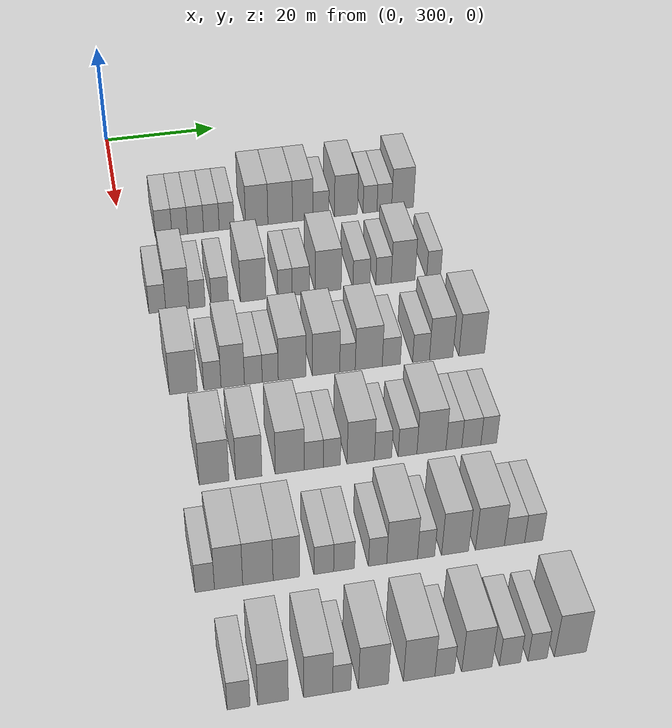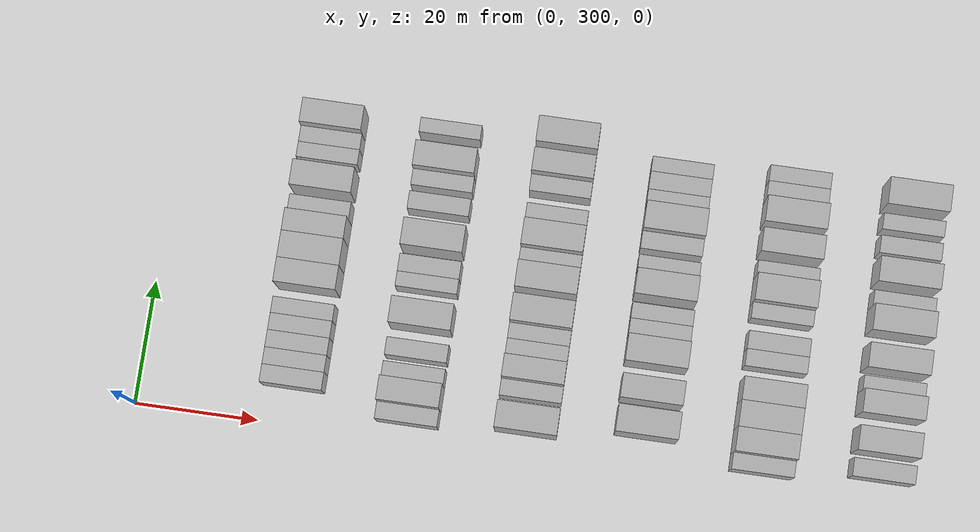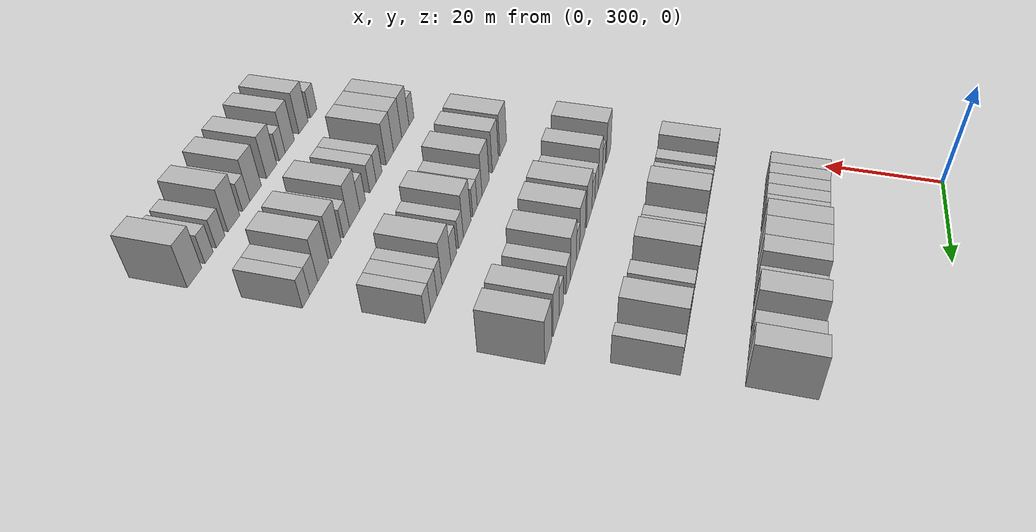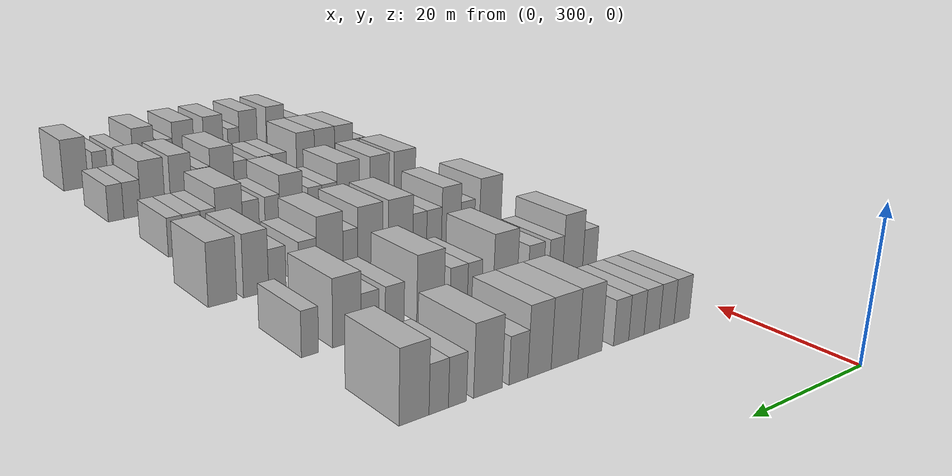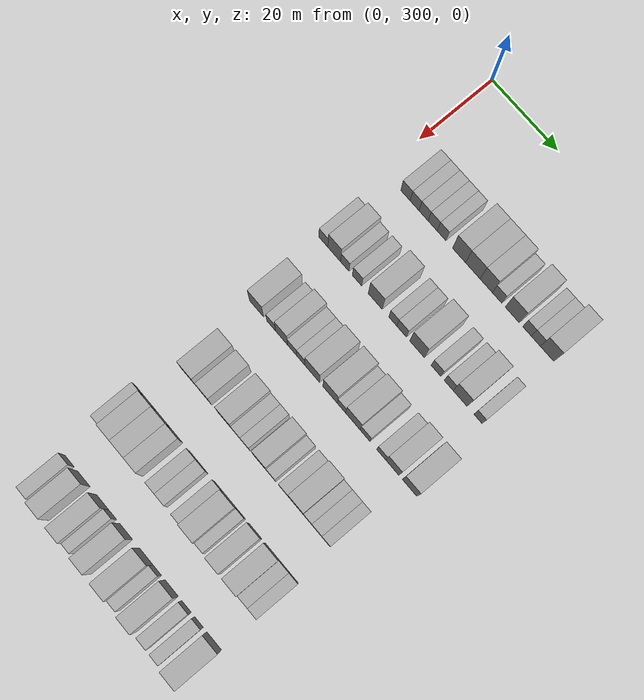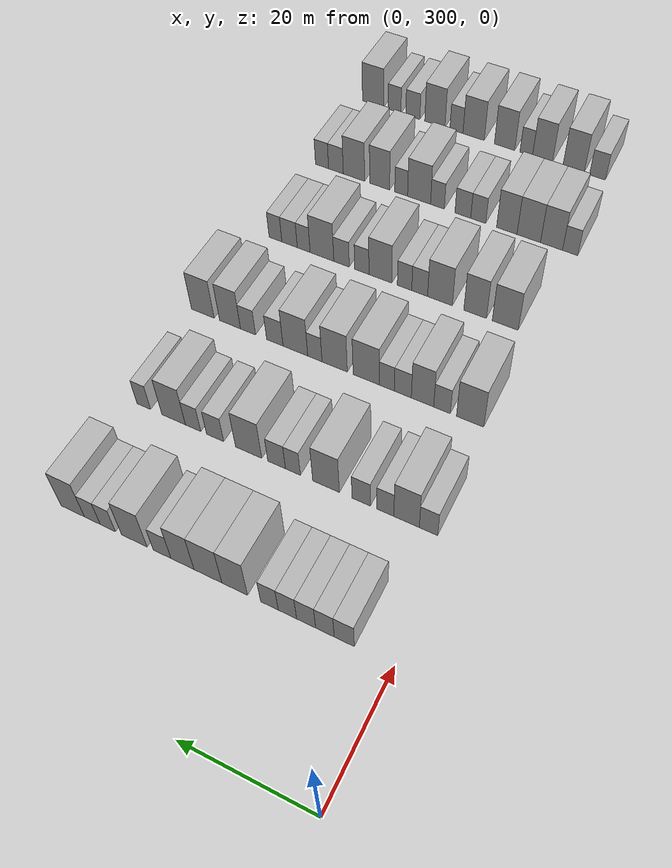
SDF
<sdf version="1.6">
 <world name="default">
  <model name="building_162">
   <static>1</static>
   <pose>25.0000 307.2149 0 0.000000 0.000000 0.000000</pose>
   <link name="link">
    <pose>0 0 3.00 0 0 0</pose>
    <collision name="collision"><geometry><box><size>10.0000 2.9018 6.0000</size></box></geometry></collision>
    <visual name="visual">
     <cast_shadows>0</cast_shadows>
     <geometry><box><size>10.0000 2.9018 6.0000</size></box></geometry>
     <material>
      <script>
       <uri>model://HANNAS_wall/materials/scripts</uri>
       <uri>model://HANNAS_wall/materials/textures</uri>
       <name>vrc/HANNAS_wall</name>
      </script>
     </material>
    </visual>
   </link>
  </model>
  <model name="building_163">
   <static>1</static>
   <pose>25.0000 310.0305 0 0.000000 0.000000 0.000000</pose>
   <link name="link">
    <pose>0 0 3.00 0 0 0</pose>
    <collision name="collision"><geometry><box><size>10.0000 2.7294 6.0000</size></box></geometry></collision>
    <visual name="visual">
     <cast_shadows>0</cast_shadows>
     <geometry><box><size>10.0000 2.7294 6.0000</size></box></geometry>
     <material>
      <script>
       <uri>model://HANNAS_wall/materials/scripts</uri>
       <uri>model://HANNAS_wall/materials/textures</uri>
       <name>vrc/HANNAS_wall</name>
      </script>
     </material>
    </visual>
   </link>
  </model>
  <model name="building_164">
   <static>1</static>
   <pose>25.0000 312.7984 0 0.000000 0.000000 0.000000</pose>
   <link name="link">
    <pose>0 0 3.00 0 0 0</pose>
    <collision name="collision"><geometry><box><size>10.0000 2.8065 6.0000</size></box></geometry></collision>
    <visual name="visual">
     <cast_shadows>0</cast_shadows>
     <geometry><box><size>10.0000 2.8065 6.0000</size></box></geometry>
     <material>
      <script>
       <uri>model://HANNAS_wall/materials/scripts</uri>
       <uri>model://HANNAS_wall/materials/textures</uri>
       <name>vrc/HANNAS_wall</name>
      </script>
     </material>
    </visual>
   </link>
  </model>
  <model name="building_165">
   <static>1</static>
   <pose>25.0000 315.5755 0 0.000000 0.000000 0.000000</pose>
   <link name="link">
    <pose>0 0 3.00 0 0 0</pose>
    <collision name="collision"><geometry><box><size>10.0000 2.7477 6.0000</size></box></geometry></collision>
    <visual name="visual">
     <cast_shadows>0</cast_shadows>
     <geometry><box><size>10.0000 2.7477 6.0000</size></box></geometry>
     <material>
      <script>
       <uri>model://HANNAS_wall/materials/scripts</uri>
       <uri>model://HANNAS_wall/materials/textures</uri>
       <name>vrc/HANNAS_wall</name>
      </script>
     </material>
    </visual>
   </link>
  </model>
  <model name="building_166">
   <static>1</static>
   <pose>25.0000 318.2759 0 0.000000 0.000000 0.000000</pose>
   <link name="link">
    <pose>0 0 3.00 0 0 0</pose>
    <collision name="collision"><geometry><box><size>10.0000 2.6532 6.0000</size></box></geometry></collision>
    <visual name="visual">
     <cast_shadows>0</cast_shadows>
     <geometry><box><size>10.0000 2.6532 6.0000</size></box></geometry>
     <material>
      <script>
       <uri>model://HANNAS_wall/materials/scripts</uri>
       <uri>model://HANNAS_wall/materials/textures</uri>
       <name>vrc/HANNAS_wall</name>
      </script>
     </material>
    </visual>
   </link>
  </model>
  <model name="building_167">
   <static>1</static>
   <pose>25.0000 323.5808 0 0.000000 0.000000 0.000000</pose>
   <link name="link">
    <pose>0 0 4.50 0 0 0</pose>
    <collision name="collision"><geometry><box><size>10.0000 3.9565 9.0000</size></box></geometry></collision>
    <visual name="visual">
     <cast_shadows>0</cast_shadows>
     <geometry><box><size>10.0000 3.9565 9.0000</size></box></geometry>
     <material>
      <script>
       <uri>model://HANNAS_wall/materials/scripts</uri>
       <uri>model://HANNAS_wall/materials/textures</uri>
       <name>vrc/HANNAS_wall</name>
      </script>
     </material>
    </visual>
   </link>
  </model>
  <model name="building_168">
   <static>1</static>
   <pose>25.0000 327.7435 0 0.000000 0.000000 0.000000</pose>
   <link name="link">
    <pose>0 0 4.50 0 0 0</pose>
    <collision name="collision"><geometry><box><size>10.0000 4.3690 9.0000</size></box></geometry></collision>
    <visual name="visual">
     <cast_shadows>0</cast_shadows>
     <geometry><box><size>10.0000 4.3690 9.0000</size></box></geometry>
     <material>
      <script>
       <uri>model://HANNAS_wall/materials/scripts</uri>
       <uri>model://HANNAS_wall/materials/textures</uri>
       <name>vrc/HANNAS_wall</name>
      </script>
     </material>
    </visual>
   </link>
  </model>
  <model name="building_169">
   <static>1</static>
   <pose>25.0000 331.7525 0 0.000000 0.000000 0.000000</pose>
   <link name="link">
    <pose>0 0 4.50 0 0 0</pose>
    <collision name="collision"><geometry><box><size>10.0000 3.6490 9.0000</size></box></geometry></collision>
    <visual name="visual">
     <cast_shadows>0</cast_shadows>
     <geometry><box><size>10.0000 3.6490 9.0000</size></box></geometry>
     <material>
      <script>
       <uri>model://HANNAS_wall/materials/scripts</uri>
       <uri>model://HANNAS_wall/materials/textures</uri>
       <name>vrc/HANNAS_wall</name>
      </script>
     </material>
    </visual>
   </link>
  </model>
  <model name="building_170">
   <static>1</static>
   <pose>25.0000 335.0031 0 0.000000 0.000000 0.000000</pose>
   <link name="link">
    <pose>0 0 3.00 0 0 0</pose>
    <collision name="collision"><geometry><box><size>10.0000 2.8521 6.0000</size></box></geometry></collision>
    <visual name="visual">
     <cast_shadows>0</cast_shadows>
     <geometry><box><size>10.0000 2.8521 6.0000</size></box></geometry>
     <material>
      <script>
       <uri>model://HANNAS_wall/materials/scripts</uri>
       <uri>model://HANNAS_wall/materials/textures</uri>
       <name>vrc/HANNAS_wall</name>
      </script>
     </material>
    </visual>
   </link>
  </model>
  <model name="building_171">
   <static>1</static>
   <pose>25.0000 339.5167 0 0.000000 0.000000 0.000000</pose>
   <link name="link">
    <pose>0 0 4.50 0 0 0</pose>
    <collision name="collision"><geometry><box><size>10.0000 4.1750 9.0000</size></box></geometry></collision>
    <visual name="visual">
     <cast_shadows>0</cast_shadows>
     <geometry><box><size>10.0000 4.1750 9.0000</size></box></geometry>
     <material>
      <script>
       <uri>model://HANNAS_wall/materials/scripts</uri>
       <uri>model://HANNAS_wall/materials/textures</uri>
       <name>vrc/HANNAS_wall</name>
      </script>
     </material>
    </visual>
   </link>
  </model>
  <model name="building_172">
   <static>1</static>
   <pose>25.0000 343.8667 0 0.000000 0.000000 0.000000</pose>
   <link name="link">
    <pose>0 0 3.00 0 0 0</pose>
    <collision name="collision"><geometry><box><size>10.0000 2.5251 6.0000</size></box></geometry></collision>
    <visual name="visual">
     <cast_shadows>0</cast_shadows>
     <geometry><box><size>10.0000 2.5251 6.0000</size></box></geometry>
     <material>
      <script>
       <uri>model://HANNAS_wall/materials/scripts</uri>
       <uri>model://HANNAS_wall/materials/textures</uri>
       <name>vrc/HANNAS_wall</name>
      </script>
     </material>
    </visual>
   </link>
  </model>
  <model name="building_173">
   <static>1</static>
   <pose>25.0000 346.4542 0 0.000000 0.000000 0.000000</pose>
   <link name="link">
    <pose>0 0 3.00 0 0 0</pose>
    <collision name="collision"><geometry><box><size>10.0000 2.6498 6.0000</size></box></geometry></collision>
    <visual name="visual">
     <cast_shadows>0</cast_shadows>
     <geometry><box><size>10.0000 2.6498 6.0000</size></box></geometry>
     <material>
      <script>
       <uri>model://HANNAS_wall/materials/scripts</uri>
       <uri>model://HANNAS_wall/materials/textures</uri>
       <name>vrc/HANNAS_wall</name>
      </script>
     </material>
    </visual>
   </link>
  </model>
  <model name="building_174">
   <static>1</static>
   <pose>25.0000 349.7677 0 0.000000 0.000000 0.000000</pose>
   <link name="link">
    <pose>0 0 4.50 0 0 0</pose>
    <collision name="collision"><geometry><box><size>10.0000 3.9772 9.0000</size></box></geometry></collision>
    <visual name="visual">
     <cast_shadows>0</cast_shadows>
     <geometry><box><size>10.0000 3.9772 9.0000</size></box></geometry>
     <material>
      <script>
       <uri>model://HANNAS_wall/materials/scripts</uri>
       <uri>model://HANNAS_wall/materials/textures</uri>
       <name>vrc/HANNAS_wall</name>
      </script>
     </material>
    </visual>
   </link>
  </model>
  <model name="building_331">
   <static>1</static>
   <pose>44.0000 303.9825 0 0.000000 0.000000 0.000000</pose>
   <link name="link">
    <pose>0 0 3.00 0 0 0</pose>
    <collision name="collision"><geometry><box><size>10.0000 2.7827 6.0000</size></box></geometry></collision>
    <visual name="visual">
     <cast_shadows>0</cast_shadows>
     <geometry><box><size>10.0000 2.7827 6.0000</size></box></geometry>
     <material>
      <script>
       <uri>model://HANNAS_wall/materials/scripts</uri>
       <uri>model://HANNAS_wall/materials/textures</uri>
       <name>vrc/HANNAS_wall</name>
      </script>
     </material>
    </visual>
   </link>
  </model>
  <model name="building_332">
   <static>1</static>
   <pose>44.0000 307.3177 0 0.000000 0.000000 0.000000</pose>
   <link name="link">
    <pose>0 0 4.50 0 0 0</pose>
    <collision name="collision"><geometry><box><size>10.0000 3.8877 9.0000</size></box></geometry></collision>
    <visual name="visual">
     <cast_shadows>0</cast_shadows>
     <geometry><box><size>10.0000 3.8877 9.0000</size></box></geometry>
     <material>
      <script>
       <uri>model://HANNAS_wall/materials/scripts</uri>
       <uri>model://HANNAS_wall/materials/textures</uri>
       <name>vrc/HANNAS_wall</name>
      </script>
     </material>
    </visual>
   </link>
  </model>
  <model name="building_333">
   <static>1</static>
   <pose>44.0000 310.5770 0 0.000000 0.000000 0.000000</pose>
   <link name="link">
    <pose>0 0 3.00 0 0 0</pose>
    <collision name="collision"><geometry><box><size>10.0000 2.6309 6.0000</size></box></geometry></collision>
    <visual name="visual">
     <cast_shadows>0</cast_shadows>
     <geometry><box><size>10.0000 2.6309 6.0000</size></box></geometry>
     <material>
      <script>
       <uri>model://HANNAS_wall/materials/scripts</uri>
       <uri>model://HANNAS_wall/materials/textures</uri>
       <name>vrc/HANNAS_wall</name>
      </script>
     </material>
    </visual>
   </link>
  </model>
  <model name="building_334">
   <static>1</static>
   <pose>44.0000 314.3321 0 0.000000 0.000000 0.000000</pose>
   <link name="link">
    <pose>0 0 3.00 0 0 0</pose>
    <collision name="collision"><geometry><box><size>10.0000 2.8793 6.0000</size></box></geometry></collision>
    <visual name="visual">
     <cast_shadows>0</cast_shadows>
     <geometry><box><size>10.0000 2.8793 6.0000</size></box></geometry>
     <material>
      <script>
       <uri>model://HANNAS_wall/materials/scripts</uri>
       <uri>model://HANNAS_wall/materials/textures</uri>
       <name>vrc/HANNAS_wall</name>
      </script>
     </material>
    </visual>
   </link>
  </model>
  <model name="building_335">
   <static>1</static>
   <pose>44.0000 319.9054 0 0.000000 0.000000 0.000000</pose>
   <link name="link">
    <pose>0 0 4.50 0 0 0</pose>
    <collision name="collision"><geometry><box><size>10.0000 4.2673 9.0000</size></box></geometry></collision>
    <visual name="visual">
     <cast_shadows>0</cast_shadows>
     <geometry><box><size>10.0000 4.2673 9.0000</size></box></geometry>
     <material>
      <script>
       <uri>model://HANNAS_wall/materials/scripts</uri>
       <uri>model://HANNAS_wall/materials/textures</uri>
       <name>vrc/HANNAS_wall</name>
      </script>
     </material>
    </visual>
   </link>
  </model>
  <model name="building_336">
   <static>1</static>
   <pose>44.0000 325.2587 0 0.000000 0.000000 0.000000</pose>
   <link name="link">
    <pose>0 0 3.00 0 0 0</pose>
    <collision name="collision"><geometry><box><size>10.0000 2.4392 6.0000</size></box></geometry></collision>
    <visual name="visual">
     <cast_shadows>0</cast_shadows>
     <geometry><box><size>10.0000 2.4392 6.0000</size></box></geometry>
     <material>
      <script>
       <uri>model://HANNAS_wall/materials/scripts</uri>
       <uri>model://HANNAS_wall/materials/textures</uri>
       <name>vrc/HANNAS_wall</name>
      </script>
     </material>
    </visual>
   </link>
  </model>
  <model name="building_337">
   <static>1</static>
   <pose>44.0000 327.9292 0 0.000000 0.000000 0.000000</pose>
   <link name="link">
    <pose>0 0 3.00 0 0 0</pose>
    <collision name="collision"><geometry><box><size>10.0000 2.9018 6.0000</size></box></geometry></collision>
    <visual name="visual">
     <cast_shadows>0</cast_shadows>
     <geometry><box><size>10.0000 2.9018 6.0000</size></box></geometry>
     <material>
      <script>
       <uri>model://HANNAS_wall/materials/scripts</uri>
       <uri>model://HANNAS_wall/materials/textures</uri>
       <name>vrc/HANNAS_wall</name>
      </script>
     </material>
    </visual>
   </link>
  </model>
  <model name="building_338">
   <static>1</static>
   <pose>44.0000 332.5741 0 0.000000 0.000000 0.000000</pose>
   <link name="link">
    <pose>0 0 4.50 0 0 0</pose>
    <collision name="collision"><geometry><box><size>10.0000 4.3881 9.0000</size></box></geometry></collision>
    <visual name="visual">
     <cast_shadows>0</cast_shadows>
     <geometry><box><size>10.0000 4.3881 9.0000</size></box></geometry>
     <material>
      <script>
       <uri>model://HANNAS_wall/materials/scripts</uri>
       <uri>model://HANNAS_wall/materials/textures</uri>
       <name>vrc/HANNAS_wall</name>
      </script>
     </material>
    </visual>
   </link>
  </model>
  <model name="building_339">
   <static>1</static>
   <pose>44.0000 338.2276 0 0.000000 0.000000 0.000000</pose>
   <link name="link">
    <pose>0 0 3.00 0 0 0</pose>
    <collision name="collision"><geometry><box><size>10.0000 2.9188 6.0000</size></box></geometry></collision>
    <visual name="visual">
     <cast_shadows>0</cast_shadows>
     <geometry><box><size>10.0000 2.9188 6.0000</size></box></geometry>
     <material>
      <script>
       <uri>model://HANNAS_wall/materials/scripts</uri>
       <uri>model://HANNAS_wall/materials/textures</uri>
       <name>vrc/HANNAS_wall</name>
      </script>
     </material>
    </visual>
   </link>
  </model>
  <model name="building_340">
   <static>1</static>
   <pose>44.0000 342.0137 0 0.000000 0.000000 0.000000</pose>
   <link name="link">
    <pose>0 0 3.00 0 0 0</pose>
    <collision name="collision"><geometry><box><size>10.0000 2.6535 6.0000</size></box></geometry></collision>
    <visual name="visual">
     <cast_shadows>0</cast_shadows>
     <geometry><box><size>10.0000 2.6535 6.0000</size></box></geometry>
     <material>
      <script>
       <uri>model://HANNAS_wall/materials/scripts</uri>
       <uri>model://HANNAS_wall/materials/textures</uri>
       <name>vrc/HANNAS_wall</name>
      </script>
     </material>
    </visual>
   </link>
  </model>
  <model name="building_341">
   <static>1</static>
   <pose>44.0000 345.3992 0 0.000000 0.000000 0.000000</pose>
   <link name="link">
    <pose>0 0 4.50 0 0 0</pose>
    <collision name="collision"><geometry><box><size>10.0000 4.1176 9.0000</size></box></geometry></collision>
    <visual name="visual">
     <cast_shadows>0</cast_shadows>
     <geometry><box><size>10.0000 4.1176 9.0000</size></box></geometry>
     <material>
      <script>
       <uri>model://HANNAS_wall/materials/scripts</uri>
       <uri>model://HANNAS_wall/materials/textures</uri>
       <name>vrc/HANNAS_wall</name>
      </script>
     </material>
    </visual>
   </link>
  </model>
  <model name="building_342">
   <static>1</static>
   <pose>44.0000 350.6630 0 0.000000 0.000000 0.000000</pose>
   <link name="link">
    <pose>0 0 3.00 0 0 0</pose>
    <collision name="collision"><geometry><box><size>10.0000 2.4100 6.0000</size></box></geometry></collision>
    <visual name="visual">
     <cast_shadows>0</cast_shadows>
     <geometry><box><size>10.0000 2.4100 6.0000</size></box></geometry>
     <material>
      <script>
       <uri>model://HANNAS_wall/materials/scripts</uri>
       <uri>model://HANNAS_wall/materials/textures</uri>
       <name>vrc/HANNAS_wall</name>
      </script>
     </material>
    </visual>
   </link>
  </model>
  <model name="building_499">
   <static>1</static>
   <pose>63.0000 305.8932 0 0.000000 0.000000 0.000000</pose>
   <link name="link">
    <pose>0 0 4.50 0 0 0</pose>
    <collision name="collision"><geometry><box><size>10.0000 4.3655 9.0000</size></box></geometry></collision>
    <visual name="visual">
     <cast_shadows>0</cast_shadows>
     <geometry><box><size>10.0000 4.3655 9.0000</size></box></geometry>
     <material>
      <script>
       <uri>model://HANNAS_wall/materials/scripts</uri>
       <uri>model://HANNAS_wall/materials/textures</uri>
       <name>vrc/HANNAS_wall</name>
      </script>
     </material>
    </visual>
   </link>
  </model>
  <model name="building_500">
   <static>1</static>
   <pose>63.0000 310.4336 0 0.000000 0.000000 0.000000</pose>
   <link name="link">
    <pose>0 0 3.00 0 0 0</pose>
    <collision name="collision"><geometry><box><size>10.0000 2.7154 6.0000</size></box></geometry></collision>
    <visual name="visual">
     <cast_shadows>0</cast_shadows>
     <geometry><box><size>10.0000 2.7154 6.0000</size></box></geometry>
     <material>
      <script>
       <uri>model://HANNAS_wall/materials/scripts</uri>
       <uri>model://HANNAS_wall/materials/textures</uri>
       <name>vrc/HANNAS_wall</name>
      </script>
     </material>
    </visual>
   </link>
  </model>
  <model name="building_501">
   <static>1</static>
   <pose>63.0000 313.6312 0 0.000000 0.000000 0.000000</pose>
   <link name="link">
    <pose>0 0 4.50 0 0 0</pose>
    <collision name="collision"><geometry><box><size>10.0000 3.6798 9.0000</size></box></geometry></collision>
    <visual name="visual">
     <cast_shadows>0</cast_shadows>
     <geometry><box><size>10.0000 3.6798 9.0000</size></box></geometry>
     <material>
      <script>
       <uri>model://HANNAS_wall/materials/scripts</uri>
       <uri>model://HANNAS_wall/materials/textures</uri>
       <name>vrc/HANNAS_wall</name>
      </script>
     </material>
    </visual>
   </link>
  </model>
  <model name="building_502">
   <static>1</static>
   <pose>63.0000 316.8784 0 0.000000 0.000000 0.000000</pose>
   <link name="link">
    <pose>0 0 3.00 0 0 0</pose>
    <collision name="collision"><geometry><box><size>10.0000 2.8145 6.0000</size></box></geometry></collision>
    <visual name="visual">
     <cast_shadows>0</cast_shadows>
     <geometry><box><size>10.0000 2.8145 6.0000</size></box></geometry>
     <material>
      <script>
       <uri>model://HANNAS_wall/materials/scripts</uri>
       <uri>model://HANNAS_wall/materials/textures</uri>
       <name>vrc/HANNAS_wall</name>
      </script>
     </material>
    </visual>
   </link>
  </model>
  <model name="building_503">
   <static>1</static>
   <pose>63.0000 319.5585 0 0.000000 0.000000 0.000000</pose>
   <link name="link">
    <pose>0 0 3.00 0 0 0</pose>
    <collision name="collision"><geometry><box><size>10.0000 2.5456 6.0000</size></box></geometry></collision>
    <visual name="visual">
     <cast_shadows>0</cast_shadows>
     <geometry><box><size>10.0000 2.5456 6.0000</size></box></geometry>
     <material>
      <script>
       <uri>model://HANNAS_wall/materials/scripts</uri>
       <uri>model://HANNAS_wall/materials/textures</uri>
       <name>vrc/HANNAS_wall</name>
      </script>
     </material>
    </visual>
   </link>
  </model>
  <model name="building_504">
   <static>1</static>
   <pose>63.0000 323.0516 0 0.000000 0.000000 0.000000</pose>
   <link name="link">
    <pose>0 0 4.50 0 0 0</pose>
    <collision name="collision"><geometry><box><size>10.0000 4.4406 9.0000</size></box></geometry></collision>
    <visual name="visual">
     <cast_shadows>0</cast_shadows>
     <geometry><box><size>10.0000 4.4406 9.0000</size></box></geometry>
     <material>
      <script>
       <uri>model://HANNAS_wall/materials/scripts</uri>
       <uri>model://HANNAS_wall/materials/textures</uri>
       <name>vrc/HANNAS_wall</name>
      </script>
     </material>
    </visual>
   </link>
  </model>
  <model name="building_505">
   <static>1</static>
   <pose>63.0000 328.4575 0 0.000000 0.000000 0.000000</pose>
   <link name="link">
    <pose>0 0 4.50 0 0 0</pose>
    <collision name="collision"><geometry><box><size>10.0000 4.3714 9.0000</size></box></geometry></collision>
    <visual name="visual">
     <cast_shadows>0</cast_shadows>
     <geometry><box><size>10.0000 4.3714 9.0000</size></box></geometry>
     <material>
      <script>
       <uri>model://HANNAS_wall/materials/scripts</uri>
       <uri>model://HANNAS_wall/materials/textures</uri>
       <name>vrc/HANNAS_wall</name>
      </script>
     </material>
    </visual>
   </link>
  </model>
  <model name="building_506">
   <static>1</static>
   <pose>63.0000 331.8938 0 0.000000 0.000000 0.000000</pose>
   <link name="link">
    <pose>0 0 3.00 0 0 0</pose>
    <collision name="collision"><geometry><box><size>10.0000 2.5011 6.0000</size></box></geometry></collision>
    <visual name="visual">
     <cast_shadows>0</cast_shadows>
     <geometry><box><size>10.0000 2.5011 6.0000</size></box></geometry>
     <material>
      <script>
       <uri>model://HANNAS_wall/materials/scripts</uri>
       <uri>model://HANNAS_wall/materials/textures</uri>
       <name>vrc/HANNAS_wall</name>
      </script>
     </material>
    </visual>
   </link>
  </model>
  <model name="building_507">
   <static>1</static>
   <pose>63.0000 335.3269 0 0.000000 0.000000 0.000000</pose>
   <link name="link">
    <pose>0 0 4.50 0 0 0</pose>
    <collision name="collision"><geometry><box><size>10.0000 4.3652 9.0000</size></box></geometry></collision>
    <visual name="visual">
     <cast_shadows>0</cast_shadows>
     <geometry><box><size>10.0000 4.3652 9.0000</size></box></geometry>
     <material>
      <script>
       <uri>model://HANNAS_wall/materials/scripts</uri>
       <uri>model://HANNAS_wall/materials/textures</uri>
       <name>vrc/HANNAS_wall</name>
      </script>
     </material>
    </visual>
   </link>
  </model>
  <model name="building_508">
   <static>1</static>
   <pose>63.0000 338.9774 0 0.000000 0.000000 0.000000</pose>
   <link name="link">
    <pose>0 0 3.00 0 0 0</pose>
    <collision name="collision"><geometry><box><size>10.0000 2.9358 6.0000</size></box></geometry></collision>
    <visual name="visual">
     <cast_shadows>0</cast_shadows>
     <geometry><box><size>10.0000 2.9358 6.0000</size></box></geometry>
     <material>
      <script>
       <uri>model://HANNAS_wall/materials/scripts</uri>
       <uri>model://HANNAS_wall/materials/textures</uri>
       <name>vrc/HANNAS_wall</name>
      </script>
     </material>
    </visual>
   </link>
  </model>
  <model name="building_509">
   <static>1</static>
   <pose>63.0000 343.8180 0 0.000000 0.000000 0.000000</pose>
   <link name="link">
    <pose>0 0 3.00 0 0 0</pose>
    <collision name="collision"><geometry><box><size>10.0000 2.7454 6.0000</size></box></geometry></collision>
    <visual name="visual">
     <cast_shadows>0</cast_shadows>
     <geometry><box><size>10.0000 2.7454 6.0000</size></box></geometry>
     <material>
      <script>
       <uri>model://HANNAS_wall/materials/scripts</uri>
       <uri>model://HANNAS_wall/materials/textures</uri>
       <name>vrc/HANNAS_wall</name>
      </script>
     </material>
    </visual>
   </link>
  </model>
  <model name="building_510">
   <static>1</static>
   <pose>63.0000 347.1104 0 0.000000 0.000000 0.000000</pose>
   <link name="link">
    <pose>0 0 4.50 0 0 0</pose>
    <collision name="collision"><geometry><box><size>10.0000 3.8395 9.0000</size></box></geometry></collision>
    <visual name="visual">
     <cast_shadows>0</cast_shadows>
     <geometry><box><size>10.0000 3.8395 9.0000</size></box></geometry>
     <material>
      <script>
       <uri>model://HANNAS_wall/materials/scripts</uri>
       <uri>model://HANNAS_wall/materials/textures</uri>
       <name>vrc/HANNAS_wall</name>
      </script>
     </material>
    </visual>
   </link>
  </model>
  <model name="building_511">
   <static>1</static>
   <pose>63.0000 352.1416 0 0.000000 0.000000 0.000000</pose>
   <link name="link">
    <pose>0 0 4.50 0 0 0</pose>
    <collision name="collision"><geometry><box><size>10.0000 4.2230 9.0000</size></box></geometry></collision>
    <visual name="visual">
     <cast_shadows>0</cast_shadows>
     <geometry><box><size>10.0000 4.2230 9.0000</size></box></geometry>
     <material>
      <script>
       <uri>model://HANNAS_wall/materials/scripts</uri>
       <uri>model://HANNAS_wall/materials/textures</uri>
       <name>vrc/HANNAS_wall</name>
      </script>
     </material>
    </visual>
   </link>
  </model>
  <model name="building_669">
   <static>1</static>
   <pose>82.0000 308.0020 0 0.000000 0.000000 0.000000</pose>
   <link name="link">
    <pose>0 0 4.50 0 0 0</pose>
    <collision name="collision"><geometry><box><size>10.0000 4.4066 9.0000</size></box></geometry></collision>
    <visual name="visual">
     <cast_shadows>0</cast_shadows>
     <geometry><box><size>10.0000 4.4066 9.0000</size></box></geometry>
     <material>
      <script>
       <uri>model://HANNAS_wall/materials/scripts</uri>
       <uri>model://HANNAS_wall/materials/textures</uri>
       <name>vrc/HANNAS_wall</name>
      </script>
     </material>
    </visual>
   </link>
  </model>
  <model name="building_670">
   <static>1</static>
   <pose>82.0000 313.1527 0 0.000000 0.000000 0.000000</pose>
   <link name="link">
    <pose>0 0 4.50 0 0 0</pose>
    <collision name="collision"><geometry><box><size>10.0000 3.8948 9.0000</size></box></geometry></collision>
    <visual name="visual">
     <cast_shadows>0</cast_shadows>
     <geometry><box><size>10.0000 3.8948 9.0000</size></box></geometry>
     <material>
      <script>
       <uri>model://HANNAS_wall/materials/scripts</uri>
       <uri>model://HANNAS_wall/materials/textures</uri>
       <name>vrc/HANNAS_wall</name>
      </script>
     </material>
    </visual>
   </link>
  </model>
  <model name="building_671">
   <static>1</static>
   <pose>82.0000 319.2821 0 0.000000 0.000000 0.000000</pose>
   <link name="link">
    <pose>0 0 4.50 0 0 0</pose>
    <collision name="collision"><geometry><box><size>10.0000 4.3639 9.0000</size></box></geometry></collision>
    <visual name="visual">
     <cast_shadows>0</cast_shadows>
     <geometry><box><size>10.0000 4.3639 9.0000</size></box></geometry>
     <material>
      <script>
       <uri>model://HANNAS_wall/materials/scripts</uri>
       <uri>model://HANNAS_wall/materials/textures</uri>
       <name>vrc/HANNAS_wall</name>
      </script>
     </material>
    </visual>
   </link>
  </model>
  <model name="building_672">
   <static>1</static>
   <pose>82.0000 322.8750 0 0.000000 0.000000 0.000000</pose>
   <link name="link">
    <pose>0 0 3.00 0 0 0</pose>
    <collision name="collision"><geometry><box><size>10.0000 2.8220 6.0000</size></box></geometry></collision>
    <visual name="visual">
     <cast_shadows>0</cast_shadows>
     <geometry><box><size>10.0000 2.8220 6.0000</size></box></geometry>
     <material>
      <script>
       <uri>model://HANNAS_wall/materials/scripts</uri>
       <uri>model://HANNAS_wall/materials/textures</uri>
       <name>vrc/HANNAS_wall</name>
      </script>
     </material>
    </visual>
   </link>
  </model>
  <model name="building_673">
   <static>1</static>
   <pose>82.0000 325.5803 0 0.000000 0.000000 0.000000</pose>
   <link name="link">
    <pose>0 0 3.00 0 0 0</pose>
    <collision name="collision"><geometry><box><size>10.0000 2.5887 6.0000</size></box></geometry></collision>
    <visual name="visual">
     <cast_shadows>0</cast_shadows>
     <geometry><box><size>10.0000 2.5887 6.0000</size></box></geometry>
     <material>
      <script>
       <uri>model://HANNAS_wall/materials/scripts</uri>
       <uri>model://HANNAS_wall/materials/textures</uri>
       <name>vrc/HANNAS_wall</name>
      </script>
     </material>
    </visual>
   </link>
  </model>
  <model name="building_674">
   <static>1</static>
   <pose>82.0000 329.9541 0 0.000000 0.000000 0.000000</pose>
   <link name="link">
    <pose>0 0 4.50 0 0 0</pose>
    <collision name="collision"><geometry><box><size>10.0000 4.1589 9.0000</size></box></geometry></collision>
    <visual name="visual">
     <cast_shadows>0</cast_shadows>
     <geometry><box><size>10.0000 4.1589 9.0000</size></box></geometry>
     <material>
      <script>
       <uri>model://HANNAS_wall/materials/scripts</uri>
       <uri>model://HANNAS_wall/materials/textures</uri>
       <name>vrc/HANNAS_wall</name>
      </script>
     </material>
    </visual>
   </link>
  </model>
  <model name="building_675">
   <static>1</static>
   <pose>82.0000 333.3426 0 0.000000 0.000000 0.000000</pose>
   <link name="link">
    <pose>0 0 3.00 0 0 0</pose>
    <collision name="collision"><geometry><box><size>10.0000 2.6181 6.0000</size></box></geometry></collision>
    <visual name="visual">
     <cast_shadows>0</cast_shadows>
     <geometry><box><size>10.0000 2.6181 6.0000</size></box></geometry>
     <material>
      <script>
       <uri>model://HANNAS_wall/materials/scripts</uri>
       <uri>model://HANNAS_wall/materials/textures</uri>
       <name>vrc/HANNAS_wall</name>
      </script>
     </material>
    </visual>
   </link>
  </model>
  <model name="building_676">
   <static>1</static>
   <pose>82.0000 337.0881 0 0.000000 0.000000 0.000000</pose>
   <link name="link">
    <pose>0 0 3.00 0 0 0</pose>
    <collision name="collision"><geometry><box><size>10.0000 2.8729 6.0000</size></box></geometry></collision>
    <visual name="visual">
     <cast_shadows>0</cast_shadows>
     <geometry><box><size>10.0000 2.8729 6.0000</size></box></geometry>
     <material>
      <script>
       <uri>model://HANNAS_wall/materials/scripts</uri>
       <uri>model://HANNAS_wall/materials/textures</uri>
       <name>vrc/HANNAS_wall</name>
      </script>
     </material>
    </visual>
   </link>
  </model>
  <model name="building_677">
   <static>1</static>
   <pose>82.0000 340.7589 0 0.000000 0.000000 0.000000</pose>
   <link name="link">
    <pose>0 0 4.50 0 0 0</pose>
    <collision name="collision"><geometry><box><size>10.0000 4.4688 9.0000</size></box></geometry></collision>
    <visual name="visual">
     <cast_shadows>0</cast_shadows>
     <geometry><box><size>10.0000 4.4688 9.0000</size></box></geometry>
     <material>
      <script>
       <uri>model://HANNAS_wall/materials/scripts</uri>
       <uri>model://HANNAS_wall/materials/textures</uri>
       <name>vrc/HANNAS_wall</name>
      </script>
     </material>
    </visual>
   </link>
  </model>
  <model name="building_678">
   <static>1</static>
   <pose>82.0000 344.2121 0 0.000000 0.000000 0.000000</pose>
   <link name="link">
    <pose>0 0 3.00 0 0 0</pose>
    <collision name="collision"><geometry><box><size>10.0000 2.4376 6.0000</size></box></geometry></collision>
    <visual name="visual">
     <cast_shadows>0</cast_shadows>
     <geometry><box><size>10.0000 2.4376 6.0000</size></box></geometry>
     <material>
      <script>
       <uri>model://HANNAS_wall/materials/scripts</uri>
       <uri>model://HANNAS_wall/materials/textures</uri>
       <name>vrc/HANNAS_wall</name>
      </script>
     </material>
    </visual>
   </link>
  </model>
  <model name="building_679">
   <static>1</static>
   <pose>82.0000 346.9061 0 0.000000 0.000000 0.000000</pose>
   <link name="link">
    <pose>0 0 3.00 0 0 0</pose>
    <collision name="collision"><geometry><box><size>10.0000 2.9502 6.0000</size></box></geometry></collision>
    <visual name="visual">
     <cast_shadows>0</cast_shadows>
     <geometry><box><size>10.0000 2.9502 6.0000</size></box></geometry>
     <material>
      <script>
       <uri>model://HANNAS_wall/materials/scripts</uri>
       <uri>model://HANNAS_wall/materials/textures</uri>
       <name>vrc/HANNAS_wall</name>
      </script>
     </material>
    </visual>
   </link>
  </model>
  <model name="building_680">
   <static>1</static>
   <pose>82.0000 349.6106 0 0.000000 0.000000 0.000000</pose>
   <link name="link">
    <pose>0 0 3.00 0 0 0</pose>
    <collision name="collision"><geometry><box><size>10.0000 2.4589 6.0000</size></box></geometry></collision>
    <visual name="visual">
     <cast_shadows>0</cast_shadows>
     <geometry><box><size>10.0000 2.4589 6.0000</size></box></geometry>
     <material>
      <script>
       <uri>model://HANNAS_wall/materials/scripts</uri>
       <uri>model://HANNAS_wall/materials/textures</uri>
       <name>vrc/HANNAS_wall</name>
      </script>
     </material>
    </visual>
   </link>
  </model>
  <model name="building_852">
   <static>1</static>
   <pose>101.0000 304.0380 0 0.000000 0.000000 0.000000</pose>
   <link name="link">
    <pose>0 0 3.00 0 0 0</pose>
    <collision name="collision"><geometry><box><size>10.0000 2.6814 6.0000</size></box></geometry></collision>
    <visual name="visual">
     <cast_shadows>0</cast_shadows>
     <geometry><box><size>10.0000 2.6814 6.0000</size></box></geometry>
     <material>
      <script>
       <uri>model://HANNAS_wall/materials/scripts</uri>
       <uri>model://HANNAS_wall/materials/textures</uri>
       <name>vrc/HANNAS_wall</name>
      </script>
     </material>
    </visual>
   </link>
  </model>
  <model name="building_853">
   <static>1</static>
   <pose>101.0000 307.3390 0 0.000000 0.000000 0.000000</pose>
   <link name="link">
    <pose>0 0 4.50 0 0 0</pose>
    <collision name="collision"><geometry><box><size>10.0000 3.9205 9.0000</size></box></geometry></collision>
    <visual name="visual">
     <cast_shadows>0</cast_shadows>
     <geometry><box><size>10.0000 3.9205 9.0000</size></box></geometry>
     <material>
      <script>
       <uri>model://HANNAS_wall/materials/scripts</uri>
       <uri>model://HANNAS_wall/materials/textures</uri>
       <name>vrc/HANNAS_wall</name>
      </script>
     </material>
    </visual>
   </link>
  </model>
  <model name="building_854">
   <static>1</static>
   <pose>101.0000 311.4166 0 0.000000 0.000000 0.000000</pose>
   <link name="link">
    <pose>0 0 4.50 0 0 0</pose>
    <collision name="collision"><geometry><box><size>10.0000 4.2347 9.0000</size></box></geometry></collision>
    <visual name="visual">
     <cast_shadows>0</cast_shadows>
     <geometry><box><size>10.0000 4.2347 9.0000</size></box></geometry>
     <material>
      <script>
       <uri>model://HANNAS_wall/materials/scripts</uri>
       <uri>model://HANNAS_wall/materials/textures</uri>
       <name>vrc/HANNAS_wall</name>
      </script>
     </material>
    </visual>
   </link>
  </model>
  <model name="building_855">
   <static>1</static>
   <pose>101.0000 315.3943 0 0.000000 0.000000 0.000000</pose>
   <link name="link">
    <pose>0 0 4.50 0 0 0</pose>
    <collision name="collision"><geometry><box><size>10.0000 3.7207 9.0000</size></box></geometry></collision>
    <visual name="visual">
     <cast_shadows>0</cast_shadows>
     <geometry><box><size>10.0000 3.7207 9.0000</size></box></geometry>
     <material>
      <script>
       <uri>model://HANNAS_wall/materials/scripts</uri>
       <uri>model://HANNAS_wall/materials/textures</uri>
       <name>vrc/HANNAS_wall</name>
      </script>
     </material>
    </visual>
   </link>
  </model>
  <model name="building_856">
   <static>1</static>
   <pose>101.0000 320.6468 0 0.000000 0.000000 0.000000</pose>
   <link name="link">
    <pose>0 0 3.00 0 0 0</pose>
    <collision name="collision"><geometry><box><size>10.0000 2.7842 6.0000</size></box></geometry></collision>
    <visual name="visual">
     <cast_shadows>0</cast_shadows>
     <geometry><box><size>10.0000 2.7842 6.0000</size></box></geometry>
     <material>
      <script>
       <uri>model://HANNAS_wall/materials/scripts</uri>
       <uri>model://HANNAS_wall/materials/textures</uri>
       <name>vrc/HANNAS_wall</name>
      </script>
     </material>
    </visual>
   </link>
  </model>
  <model name="building_857">
   <static>1</static>
   <pose>101.0000 323.5081 0 0.000000 0.000000 0.000000</pose>
   <link name="link">
    <pose>0 0 3.00 0 0 0</pose>
    <collision name="collision"><geometry><box><size>10.0000 2.9384 6.0000</size></box></geometry></collision>
    <visual name="visual">
     <cast_shadows>0</cast_shadows>
     <geometry><box><size>10.0000 2.9384 6.0000</size></box></geometry>
     <material>
      <script>
       <uri>model://HANNAS_wall/materials/scripts</uri>
       <uri>model://HANNAS_wall/materials/textures</uri>
       <name>vrc/HANNAS_wall</name>
      </script>
     </material>
    </visual>
   </link>
  </model>
  <model name="building_858">
   <static>1</static>
   <pose>101.0000 328.2821 0 0.000000 0.000000 0.000000</pose>
   <link name="link">
    <pose>0 0 3.00 0 0 0</pose>
    <collision name="collision"><geometry><box><size>10.0000 2.6096 6.0000</size></box></geometry></collision>
    <visual name="visual">
     <cast_shadows>0</cast_shadows>
     <geometry><box><size>10.0000 2.6096 6.0000</size></box></geometry>
     <material>
      <script>
       <uri>model://HANNAS_wall/materials/scripts</uri>
       <uri>model://HANNAS_wall/materials/textures</uri>
       <name>vrc/HANNAS_wall</name>
      </script>
     </material>
    </visual>
   </link>
  </model>
  <model name="building_859">
   <static>1</static>
   <pose>101.0000 331.7834 0 0.000000 0.000000 0.000000</pose>
   <link name="link">
    <pose>0 0 4.50 0 0 0</pose>
    <collision name="collision"><geometry><box><size>10.0000 4.3932 9.0000</size></box></geometry></collision>
    <visual name="visual">
     <cast_shadows>0</cast_shadows>
     <geometry><box><size>10.0000 4.3932 9.0000</size></box></geometry>
     <material>
      <script>
       <uri>model://HANNAS_wall/materials/scripts</uri>
       <uri>model://HANNAS_wall/materials/textures</uri>
       <name>vrc/HANNAS_wall</name>
      </script>
     </material>
    </visual>
   </link>
  </model>
  <model name="building_860">
   <static>1</static>
   <pose>101.0000 335.2143 0 0.000000 0.000000 0.000000</pose>
   <link name="link">
    <pose>0 0 3.00 0 0 0</pose>
    <collision name="collision"><geometry><box><size>10.0000 2.4686 6.0000</size></box></geometry></collision>
    <visual name="visual">
     <cast_shadows>0</cast_shadows>
     <geometry><box><size>10.0000 2.4686 6.0000</size></box></geometry>
     <material>
      <script>
       <uri>model://HANNAS_wall/materials/scripts</uri>
       <uri>model://HANNAS_wall/materials/textures</uri>
       <name>vrc/HANNAS_wall</name>
      </script>
     </material>
    </visual>
   </link>
  </model>
  <model name="building_861">
   <static>1</static>
   <pose>101.0000 339.3954 0 0.000000 0.000000 0.000000</pose>
   <link name="link">
    <pose>0 0 4.50 0 0 0</pose>
    <collision name="collision"><geometry><box><size>10.0000 3.8935 9.0000</size></box></geometry></collision>
    <visual name="visual">
     <cast_shadows>0</cast_shadows>
     <geometry><box><size>10.0000 3.8935 9.0000</size></box></geometry>
     <material>
      <script>
       <uri>model://HANNAS_wall/materials/scripts</uri>
       <uri>model://HANNAS_wall/materials/textures</uri>
       <name>vrc/HANNAS_wall</name>
      </script>
     </material>
    </visual>
   </link>
  </model>
  <model name="building_862">
   <static>1</static>
   <pose>101.0000 344.4556 0 0.000000 0.000000 0.000000</pose>
   <link name="link">
    <pose>0 0 4.50 0 0 0</pose>
    <collision name="collision"><geometry><box><size>10.0000 4.2269 9.0000</size></box></geometry></collision>
    <visual name="visual">
     <cast_shadows>0</cast_shadows>
     <geometry><box><size>10.0000 4.2269 9.0000</size></box></geometry>
     <material>
      <script>
       <uri>model://HANNAS_wall/materials/scripts</uri>
       <uri>model://HANNAS_wall/materials/textures</uri>
       <name>vrc/HANNAS_wall</name>
      </script>
     </material>
    </visual>
   </link>
  </model>
  <model name="building_863">
   <static>1</static>
   <pose>101.0000 348.0446 0 0.000000 0.000000 0.000000</pose>
   <link name="link">
    <pose>0 0 3.00 0 0 0</pose>
    <collision name="collision"><geometry><box><size>10.0000 2.9513 6.0000</size></box></geometry></collision>
    <visual name="visual">
     <cast_shadows>0</cast_shadows>
     <geometry><box><size>10.0000 2.9513 6.0000</size></box></geometry>
     <material>
      <script>
       <uri>model://HANNAS_wall/materials/scripts</uri>
       <uri>model://HANNAS_wall/materials/textures</uri>
       <name>vrc/HANNAS_wall</name>
      </script>
     </material>
    </visual>
   </link>
  </model>
  <model name="building_864">
   <static>1</static>
   <pose>101.0000 350.8355 0 0.000000 0.000000 0.000000</pose>
   <link name="link">
    <pose>0 0 3.00 0 0 0</pose>
    <collision name="collision"><geometry><box><size>10.0000 2.6305 6.0000</size></box></geometry></collision>
    <visual name="visual">
     <cast_shadows>0</cast_shadows>
     <geometry><box><size>10.0000 2.6305 6.0000</size></box></geometry>
     <material>
      <script>
       <uri>model://HANNAS_wall/materials/scripts</uri>
       <uri>model://HANNAS_wall/materials/textures</uri>
       <name>vrc/HANNAS_wall</name>
      </script>
     </material>
    </visual>
   </link>
  </model>
  <model name="building_1026">
   <static>1</static>
   <pose>120.0000 305.8120 0 0.000000 0.000000 0.000000</pose>
   <link name="link">
    <pose>0 0 3.00 0 0 0</pose>
    <collision name="collision"><geometry><box><size>10.0000 2.9609 6.0000</size></box></geometry></collision>
    <visual name="visual">
     <cast_shadows>0</cast_shadows>
     <geometry><box><size>10.0000 2.9609 6.0000</size></box></geometry>
     <material>
      <script>
       <uri>model://HANNAS_wall/materials/scripts</uri>
       <uri>model://HANNAS_wall/materials/textures</uri>
       <name>vrc/HANNAS_wall</name>
      </script>
     </material>
    </visual>
   </link>
  </model>
  <model name="building_1027">
   <static>1</static>
   <pose>120.0000 310.2846 0 0.000000 0.000000 0.000000</pose>
   <link name="link">
    <pose>0 0 4.50 0 0 0</pose>
    <collision name="collision"><geometry><box><size>10.0000 3.9844 9.0000</size></box></geometry></collision>
    <visual name="visual">
     <cast_shadows>0</cast_shadows>
     <geometry><box><size>10.0000 3.9844 9.0000</size></box></geometry>
     <material>
      <script>
       <uri>model://HANNAS_wall/materials/scripts</uri>
       <uri>model://HANNAS_wall/materials/textures</uri>
       <name>vrc/HANNAS_wall</name>
      </script>
     </material>
    </visual>
   </link>
  </model>
  <model name="building_1028">
   <static>1</static>
   <pose>120.0000 316.1760 0 0.000000 0.000000 0.000000</pose>
   <link name="link">
    <pose>0 0 4.50 0 0 0</pose>
    <collision name="collision"><geometry><box><size>10.0000 3.7984 9.0000</size></box></geometry></collision>
    <visual name="visual">
     <cast_shadows>0</cast_shadows>
     <geometry><box><size>10.0000 3.7984 9.0000</size></box></geometry>
     <material>
      <script>
       <uri>model://HANNAS_wall/materials/scripts</uri>
       <uri>model://HANNAS_wall/materials/textures</uri>
       <name>vrc/HANNAS_wall</name>
      </script>
     </material>
    </visual>
   </link>
  </model>
  <model name="building_1029">
   <static>1</static>
   <pose>120.0000 319.2843 0 0.000000 0.000000 0.000000</pose>
   <link name="link">
    <pose>0 0 3.00 0 0 0</pose>
    <collision name="collision"><geometry><box><size>10.0000 2.4182 6.0000</size></box></geometry></collision>
    <visual name="visual">
     <cast_shadows>0</cast_shadows>
     <geometry><box><size>10.0000 2.4182 6.0000</size></box></geometry>
     <material>
      <script>
       <uri>model://HANNAS_wall/materials/scripts</uri>
       <uri>model://HANNAS_wall/materials/textures</uri>
       <name>vrc/HANNAS_wall</name>
      </script>
     </material>
    </visual>
   </link>
  </model>
  <model name="building_1030">
   <static>1</static>
   <pose>120.0000 323.4821 0 0.000000 0.000000 0.000000</pose>
   <link name="link">
    <pose>0 0 4.50 0 0 0</pose>
    <collision name="collision"><geometry><box><size>10.0000 3.9773 9.0000</size></box></geometry></collision>
    <visual name="visual">
     <cast_shadows>0</cast_shadows>
     <geometry><box><size>10.0000 3.9773 9.0000</size></box></geometry>
     <material>
      <script>
       <uri>model://HANNAS_wall/materials/scripts</uri>
       <uri>model://HANNAS_wall/materials/textures</uri>
       <name>vrc/HANNAS_wall</name>
      </script>
     </material>
    </visual>
   </link>
  </model>
  <model name="building_1031">
   <static>1</static>
   <pose>120.0000 329.5812 0 0.000000 0.000000 0.000000</pose>
   <link name="link">
    <pose>0 0 4.50 0 0 0</pose>
    <collision name="collision"><geometry><box><size>10.0000 4.2209 9.0000</size></box></geometry></collision>
    <visual name="visual">
     <cast_shadows>0</cast_shadows>
     <geometry><box><size>10.0000 4.2209 9.0000</size></box></geometry>
     <material>
      <script>
       <uri>model://HANNAS_wall/materials/scripts</uri>
       <uri>model://HANNAS_wall/materials/textures</uri>
       <name>vrc/HANNAS_wall</name>
      </script>
     </material>
    </visual>
   </link>
  </model>
  <model name="building_1032">
   <static>1</static>
   <pose>120.0000 332.9967 0 0.000000 0.000000 0.000000</pose>
   <link name="link">
    <pose>0 0 3.00 0 0 0</pose>
    <collision name="collision"><geometry><box><size>10.0000 2.6102 6.0000</size></box></geometry></collision>
    <visual name="visual">
     <cast_shadows>0</cast_shadows>
     <geometry><box><size>10.0000 2.6102 6.0000</size></box></geometry>
     <material>
      <script>
       <uri>model://HANNAS_wall/materials/scripts</uri>
       <uri>model://HANNAS_wall/materials/textures</uri>
       <name>vrc/HANNAS_wall</name>
      </script>
     </material>
    </visual>
   </link>
  </model>
  <model name="building_1033">
   <static>1</static>
   <pose>120.0000 337.3458 0 0.000000 0.000000 0.000000</pose>
   <link name="link">
    <pose>0 0 4.50 0 0 0</pose>
    <collision name="collision"><geometry><box><size>10.0000 4.0878 9.0000</size></box></geometry></collision>
    <visual name="visual">
     <cast_shadows>0</cast_shadows>
     <geometry><box><size>10.0000 4.0878 9.0000</size></box></geometry>
     <material>
      <script>
       <uri>model://HANNAS_wall/materials/scripts</uri>
       <uri>model://HANNAS_wall/materials/textures</uri>
       <name>vrc/HANNAS_wall</name>
      </script>
     </material>
    </visual>
   </link>
  </model>
  <model name="building_1034">
   <static>1</static>
   <pose>120.0000 341.8331 0 0.000000 0.000000 0.000000</pose>
   <link name="link">
    <pose>0 0 3.00 0 0 0</pose>
    <collision name="collision"><geometry><box><size>10.0000 2.8869 6.0000</size></box></geometry></collision>
    <visual name="visual">
     <cast_shadows>0</cast_shadows>
     <geometry><box><size>10.0000 2.8869 6.0000</size></box></geometry>
     <material>
      <script>
       <uri>model://HANNAS_wall/materials/scripts</uri>
       <uri>model://HANNAS_wall/materials/textures</uri>
       <name>vrc/HANNAS_wall</name>
      </script>
     </material>
    </visual>
   </link>
  </model>
  <model name="building_1035">
   <static>1</static>
   <pose>120.0000 345.5880 0 0.000000 0.000000 0.000000</pose>
   <link name="link">
    <pose>0 0 3.00 0 0 0</pose>
    <collision name="collision"><geometry><box><size>10.0000 2.6228 6.0000</size></box></geometry></collision>
    <visual name="visual">
     <cast_shadows>0</cast_shadows>
     <geometry><box><size>10.0000 2.6228 6.0000</size></box></geometry>
     <material>
      <script>
       <uri>model://HANNAS_wall/materials/scripts</uri>
       <uri>model://HANNAS_wall/materials/textures</uri>
       <name>vrc/HANNAS_wall</name>
      </script>
     </material>
    </visual>
   </link>
  </model>
  <model name="building_1036">
   <static>1</static>
   <pose>120.0000 350.0934 0 0.000000 0.000000 0.000000</pose>
   <link name="link">
    <pose>0 0 4.50 0 0 0</pose>
    <collision name="collision"><geometry><box><size>10.0000 4.3880 9.0000</size></box></geometry></collision>
    <visual name="visual">
     <cast_shadows>0</cast_shadows>
     <geometry><box><size>10.0000 4.3880 9.0000</size></box></geometry>
     <material>
      <script>
       <uri>model://HANNAS_wall/materials/scripts</uri>
       <uri>model://HANNAS_wall/materials/textures</uri>
       <name>vrc/HANNAS_wall</name>
      </script>
     </material>
    </visual>
   </link>
  </model>
 </world>
</sdf>
